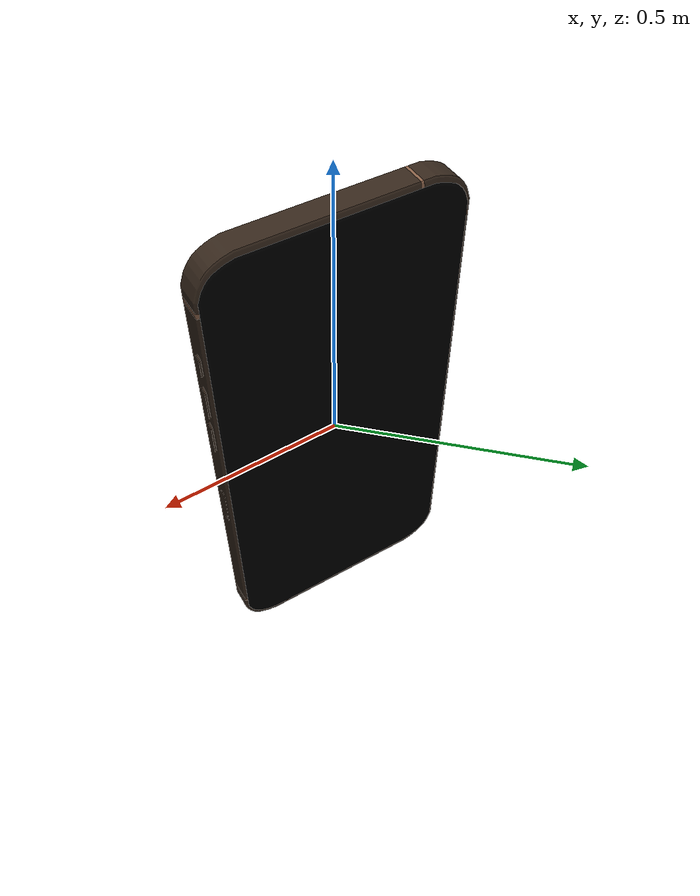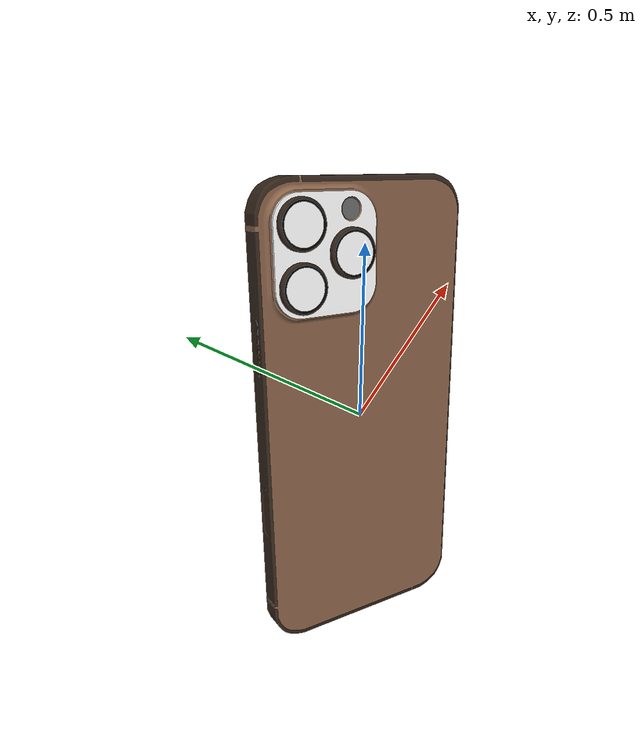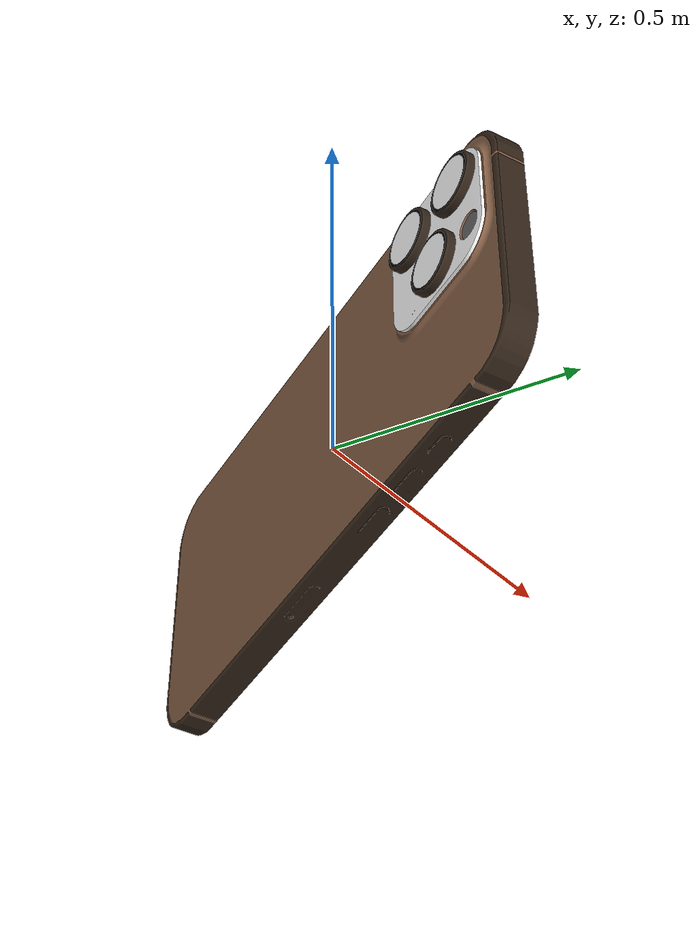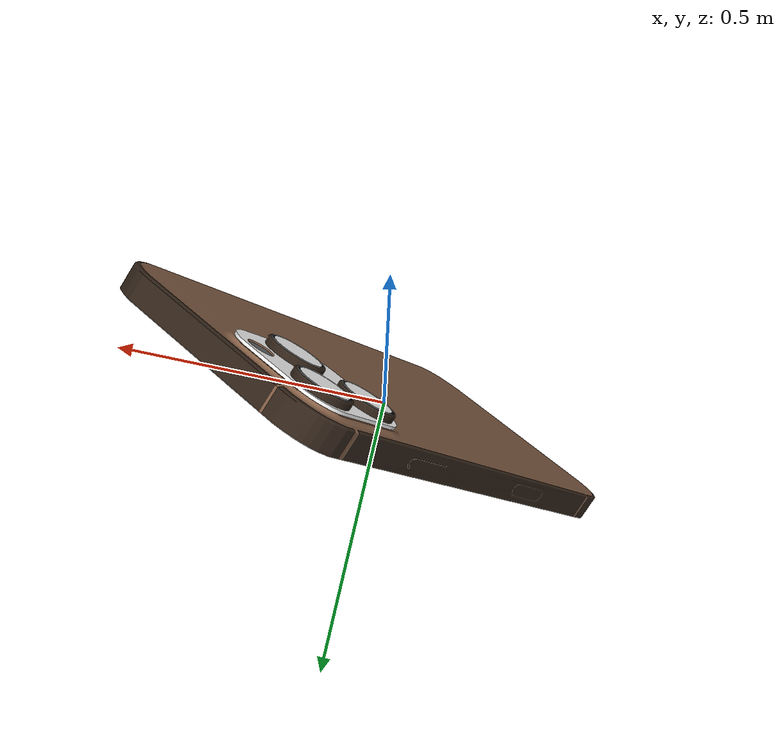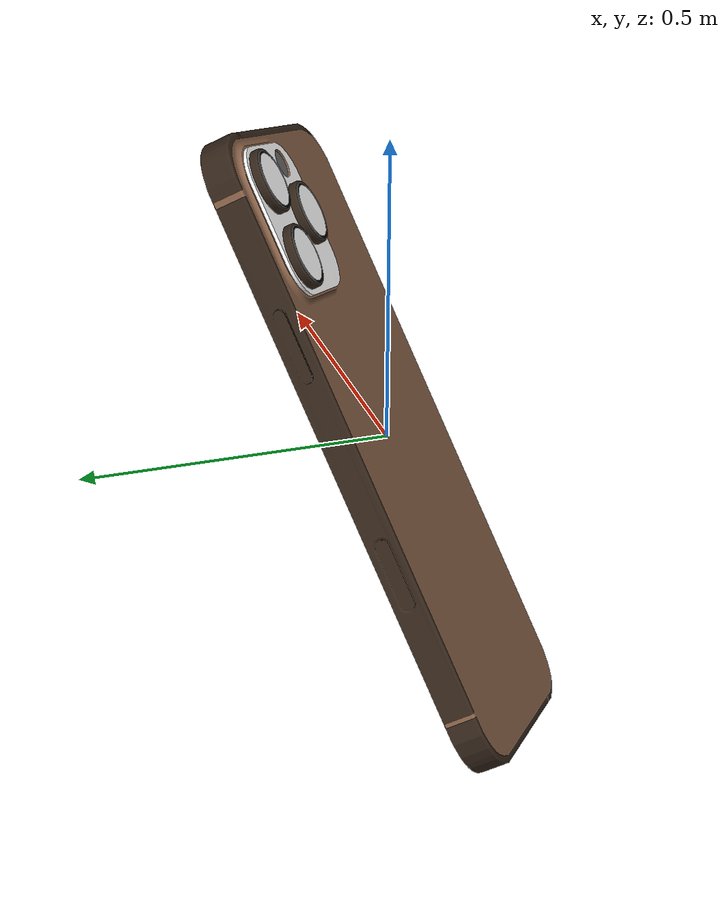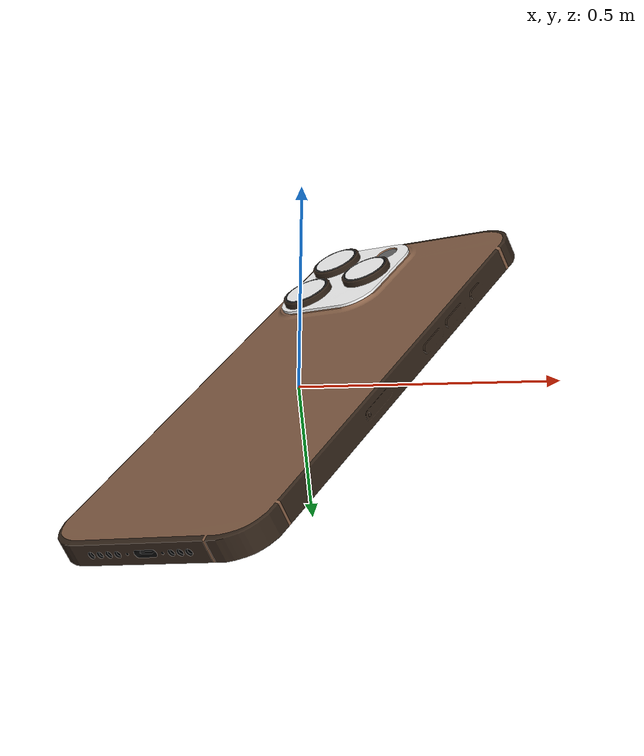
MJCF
<mujoco model="iphone">
  <asset>
  <texture file="visual/ceramic.png" name="tex-iphone" type="2d" />
  <material name="iphone" reflectance="0.5" texrepeat="1 1" texture="tex-iphone" texuniform="false" />
  <mesh file="visual/model_normalized_0.obj" name="model_normalized_0_vis" scale="1.0 1.0 1.0" /><mesh file="visual/model_normalized_1.obj" name="model_normalized_1_vis" scale="1.0 1.0 1.0" /><mesh file="visual/model_normalized_2.obj" name="model_normalized_2_vis" scale="1.0 1.0 1.0" /><mesh file="visual/model_normalized_3.obj" name="model_normalized_3_vis" scale="1.0 1.0 1.0" /><mesh file="visual/model_normalized_4.obj" name="model_normalized_4_vis" scale="1.0 1.0 1.0" /><mesh file="visual/model_normalized_5.obj" name="model_normalized_5_vis" scale="1.0 1.0 1.0" /><mesh file="visual/model_normalized_6.obj" name="model_normalized_6_vis" scale="1.0 1.0 1.0" /><mesh file="visual/model_normalized_7.obj" name="model_normalized_7_vis" scale="1.0 1.0 1.0" /><mesh file="visual/model_normalized_8.obj" name="model_normalized_8_vis" scale="1.0 1.0 1.0" /><mesh file="collision/model_normalized_collision_22.obj" name="model_normalized_collision_22._coll" scale="1.0 1.0 1.0" /><mesh file="collision/model_normalized_collision_23.obj" name="model_normalized_collision_23._coll" scale="1.0 1.0 1.0" /><mesh file="collision/model_normalized_collision_21.obj" name="model_normalized_collision_21._coll" scale="1.0 1.0 1.0" /><mesh file="collision/model_normalized_collision_20.obj" name="model_normalized_collision_20._coll" scale="1.0 1.0 1.0" /><mesh file="collision/model_normalized_collision_24.obj" name="model_normalized_collision_24._coll" scale="1.0 1.0 1.0" /><mesh file="collision/model_normalized_collision_30.obj" name="model_normalized_collision_30._coll" scale="1.0 1.0 1.0" /><mesh file="collision/model_normalized_collision_18.obj" name="model_normalized_collision_18._coll" scale="1.0 1.0 1.0" /><mesh file="collision/model_normalized_collision_19.obj" name="model_normalized_collision_19._coll" scale="1.0 1.0 1.0" /><mesh file="collision/model_normalized_collision_31.obj" name="model_normalized_collision_31._coll" scale="1.0 1.0 1.0" /><mesh file="collision/model_normalized_collision_25.obj" name="model_normalized_collision_25._coll" scale="1.0 1.0 1.0" /><mesh file="collision/model_normalized_collision_27.obj" name="model_normalized_collision_27._coll" scale="1.0 1.0 1.0" /><mesh file="collision/model_normalized_collision_26.obj" name="model_normalized_collision_26._coll" scale="1.0 1.0 1.0" /><mesh file="collision/model_normalized_collision_9.obj" name="model_normalized_collision_9._coll" scale="1.0 1.0 1.0" /><mesh file="collision/model_normalized_collision_8.obj" name="model_normalized_collision_8._coll" scale="1.0 1.0 1.0" /><mesh file="collision/model_normalized_collision_6.obj" name="model_normalized_collision_6._coll" scale="1.0 1.0 1.0" /><mesh file="collision/model_normalized_collision_7.obj" name="model_normalized_collision_7._coll" scale="1.0 1.0 1.0" /><mesh file="collision/model_normalized_collision_5.obj" name="model_normalized_collision_5._coll" scale="1.0 1.0 1.0" /><mesh file="collision/model_normalized_collision_4.obj" name="model_normalized_collision_4._coll" scale="1.0 1.0 1.0" /><mesh file="collision/model_normalized_collision_0.obj" name="model_normalized_collision_0._coll" scale="1.0 1.0 1.0" /><mesh file="collision/model_normalized_collision_1.obj" name="model_normalized_collision_1._coll" scale="1.0 1.0 1.0" /><mesh file="collision/model_normalized_collision_3.obj" name="model_normalized_collision_3._coll" scale="1.0 1.0 1.0" /><mesh file="collision/model_normalized_collision_2.obj" name="model_normalized_collision_2._coll" scale="1.0 1.0 1.0" /><mesh file="collision/model_normalized_collision_17.obj" name="model_normalized_collision_17._coll" scale="1.0 1.0 1.0" /><mesh file="collision/model_normalized_collision_16.obj" name="model_normalized_collision_16._coll" scale="1.0 1.0 1.0" /><mesh file="collision/model_normalized_collision_28.obj" name="model_normalized_collision_28._coll" scale="1.0 1.0 1.0" /><mesh file="collision/model_normalized_collision_14.obj" name="model_normalized_collision_14._coll" scale="1.0 1.0 1.0" /><mesh file="collision/model_normalized_collision_15.obj" name="model_normalized_collision_15._coll" scale="1.0 1.0 1.0" /><mesh file="collision/model_normalized_collision_29.obj" name="model_normalized_collision_29._coll" scale="1.0 1.0 1.0" /><mesh file="collision/model_normalized_collision_11.obj" name="model_normalized_collision_11._coll" scale="1.0 1.0 1.0" /><mesh file="collision/model_normalized_collision_10.obj" name="model_normalized_collision_10._coll" scale="1.0 1.0 1.0" /><mesh file="collision/model_normalized_collision_12.obj" name="model_normalized_collision_12._coll" scale="1.0 1.0 1.0" /><mesh file="collision/model_normalized_collision_13.obj" name="model_normalized_collision_13._coll" scale="1.0 1.0 1.0" /><material name="material_0" specular="0.4000000000000001" shininess="0.001" rgba="0.00000000 0.00000000 0.00000000 1.0" /><material name="material_1" specular="0.4000000000000001" shininess="0.001" rgba="1.00000000 1.00000000 1.00000000 1.0" /><material name="material_2" specular="0.4000000000000001" shininess="0.001" rgba="0.03137255 0.02745098 0.05098039 1.0" /><material name="material_3" specular="0.4000000000000001" shininess="0.001" rgba="0.00784314 0.00392157 0.01176471 1.0" /><material name="material_4" specular="0.4000000000000001" shininess="0.001" rgba="0.20000000 0.20000000 0.20000000 1.0" /><material name="material_5" specular="0.4000000000000001" shininess="0.001" rgba="0.40000000 0.40000000 0.40000000 1.0" /><material name="material_6" specular="0.4000000000000001" shininess="0.001" rgba="0.00000000 0.00000000 0.01176471 1.0" /><material name="material_7" specular="0.4000000000000001" shininess="0.001" rgba="0.52156863 0.37254902 0.27450980 1.0" /><material name="material_8" specular="0.4000000000000001" shininess="0.001" rgba="0.20000000 0.14509804 0.10196078 1.0" /></asset>
  <worldbody>
    <body>
      <body name="object">
      <geom solimp="0.998 0.998 0.001" solref="0.001 1" density="100" friction="0.95 0.3 0.1" type="mesh" mesh="model_normalized_0_vis" conaffinity="0" contype="0" group="1" material="material_8" /><geom solimp="0.998 0.998 0.001" solref="0.001 1" density="100" friction="0.95 0.3 0.1" type="mesh" mesh="model_normalized_1_vis" conaffinity="0" contype="0" group="1" material="material_7" /><geom solimp="0.998 0.998 0.001" solref="0.001 1" density="100" friction="0.95 0.3 0.1" type="mesh" mesh="model_normalized_2_vis" conaffinity="0" contype="0" group="1" material="material_6" /><geom solimp="0.998 0.998 0.001" solref="0.001 1" density="100" friction="0.95 0.3 0.1" type="mesh" mesh="model_normalized_3_vis" conaffinity="0" contype="0" group="1" material="material_5" /><geom solimp="0.998 0.998 0.001" solref="0.001 1" density="100" friction="0.95 0.3 0.1" type="mesh" mesh="model_normalized_4_vis" conaffinity="0" contype="0" group="1" material="material_4" /><geom solimp="0.998 0.998 0.001" solref="0.001 1" density="100" friction="0.95 0.3 0.1" type="mesh" mesh="model_normalized_5_vis" conaffinity="0" contype="0" group="1" material="material_3" /><geom solimp="0.998 0.998 0.001" solref="0.001 1" density="100" friction="0.95 0.3 0.1" type="mesh" mesh="model_normalized_6_vis" conaffinity="0" contype="0" group="1" material="material_2" /><geom solimp="0.998 0.998 0.001" solref="0.001 1" density="100" friction="0.95 0.3 0.1" type="mesh" mesh="model_normalized_7_vis" conaffinity="0" contype="0" group="1" material="material_1" /><geom solimp="0.998 0.998 0.001" solref="0.001 1" density="100" friction="0.95 0.3 0.1" type="mesh" mesh="model_normalized_8_vis" conaffinity="0" contype="0" group="1" material="material_0" /><geom solimp="0.998 0.998 0.001" solref="0.001 1" density="100" friction="0.95 0.3 0.1" type="mesh" mesh="model_normalized_collision_22._coll" group="0" rgba="0.8 0.8 0.8 0.0" /><geom solimp="0.998 0.998 0.001" solref="0.001 1" density="100" friction="0.95 0.3 0.1" type="mesh" mesh="model_normalized_collision_23._coll" group="0" rgba="0.8 0.8 0.8 0.0" /><geom solimp="0.998 0.998 0.001" solref="0.001 1" density="100" friction="0.95 0.3 0.1" type="mesh" mesh="model_normalized_collision_21._coll" group="0" rgba="0.8 0.8 0.8 0.0" /><geom solimp="0.998 0.998 0.001" solref="0.001 1" density="100" friction="0.95 0.3 0.1" type="mesh" mesh="model_normalized_collision_20._coll" group="0" rgba="0.8 0.8 0.8 0.0" /><geom solimp="0.998 0.998 0.001" solref="0.001 1" density="100" friction="0.95 0.3 0.1" type="mesh" mesh="model_normalized_collision_24._coll" group="0" rgba="0.8 0.8 0.8 0.0" /><geom solimp="0.998 0.998 0.001" solref="0.001 1" density="100" friction="0.95 0.3 0.1" type="mesh" mesh="model_normalized_collision_30._coll" group="0" rgba="0.8 0.8 0.8 0.0" /><geom solimp="0.998 0.998 0.001" solref="0.001 1" density="100" friction="0.95 0.3 0.1" type="mesh" mesh="model_normalized_collision_18._coll" group="0" rgba="0.8 0.8 0.8 0.0" /><geom solimp="0.998 0.998 0.001" solref="0.001 1" density="100" friction="0.95 0.3 0.1" type="mesh" mesh="model_normalized_collision_19._coll" group="0" rgba="0.8 0.8 0.8 0.0" /><geom solimp="0.998 0.998 0.001" solref="0.001 1" density="100" friction="0.95 0.3 0.1" type="mesh" mesh="model_normalized_collision_31._coll" group="0" rgba="0.8 0.8 0.8 0.0" /><geom solimp="0.998 0.998 0.001" solref="0.001 1" density="100" friction="0.95 0.3 0.1" type="mesh" mesh="model_normalized_collision_25._coll" group="0" rgba="0.8 0.8 0.8 0.0" /><geom solimp="0.998 0.998 0.001" solref="0.001 1" density="100" friction="0.95 0.3 0.1" type="mesh" mesh="model_normalized_collision_27._coll" group="0" rgba="0.8 0.8 0.8 0.0" /><geom solimp="0.998 0.998 0.001" solref="0.001 1" density="100" friction="0.95 0.3 0.1" type="mesh" mesh="model_normalized_collision_26._coll" group="0" rgba="0.8 0.8 0.8 0.0" /><geom solimp="0.998 0.998 0.001" solref="0.001 1" density="100" friction="0.95 0.3 0.1" type="mesh" mesh="model_normalized_collision_9._coll" group="0" rgba="0.8 0.8 0.8 0.0" /><geom solimp="0.998 0.998 0.001" solref="0.001 1" density="100" friction="0.95 0.3 0.1" type="mesh" mesh="model_normalized_collision_8._coll" group="0" rgba="0.8 0.8 0.8 0.0" /><geom solimp="0.998 0.998 0.001" solref="0.001 1" density="100" friction="0.95 0.3 0.1" type="mesh" mesh="model_normalized_collision_6._coll" group="0" rgba="0.8 0.8 0.8 0.0" /><geom solimp="0.998 0.998 0.001" solref="0.001 1" density="100" friction="0.95 0.3 0.1" type="mesh" mesh="model_normalized_collision_7._coll" group="0" rgba="0.8 0.8 0.8 0.0" /><geom solimp="0.998 0.998 0.001" solref="0.001 1" density="100" friction="0.95 0.3 0.1" type="mesh" mesh="model_normalized_collision_5._coll" group="0" rgba="0.8 0.8 0.8 0.0" /><geom solimp="0.998 0.998 0.001" solref="0.001 1" density="100" friction="0.95 0.3 0.1" type="mesh" mesh="model_normalized_collision_4._coll" group="0" rgba="0.8 0.8 0.8 0.0" /><geom solimp="0.998 0.998 0.001" solref="0.001 1" density="100" friction="0.95 0.3 0.1" type="mesh" mesh="model_normalized_collision_0._coll" group="0" rgba="0.8 0.8 0.8 0.0" /><geom solimp="0.998 0.998 0.001" solref="0.001 1" density="100" friction="0.95 0.3 0.1" type="mesh" mesh="model_normalized_collision_1._coll" group="0" rgba="0.8 0.8 0.8 0.0" /><geom solimp="0.998 0.998 0.001" solref="0.001 1" density="100" friction="0.95 0.3 0.1" type="mesh" mesh="model_normalized_collision_3._coll" group="0" rgba="0.8 0.8 0.8 0.0" /><geom solimp="0.998 0.998 0.001" solref="0.001 1" density="100" friction="0.95 0.3 0.1" type="mesh" mesh="model_normalized_collision_2._coll" group="0" rgba="0.8 0.8 0.8 0.0" /><geom solimp="0.998 0.998 0.001" solref="0.001 1" density="100" friction="0.95 0.3 0.1" type="mesh" mesh="model_normalized_collision_17._coll" group="0" rgba="0.8 0.8 0.8 0.0" /><geom solimp="0.998 0.998 0.001" solref="0.001 1" density="100" friction="0.95 0.3 0.1" type="mesh" mesh="model_normalized_collision_16._coll" group="0" rgba="0.8 0.8 0.8 0.0" /><geom solimp="0.998 0.998 0.001" solref="0.001 1" density="100" friction="0.95 0.3 0.1" type="mesh" mesh="model_normalized_collision_28._coll" group="0" rgba="0.8 0.8 0.8 0.0" /><geom solimp="0.998 0.998 0.001" solref="0.001 1" density="100" friction="0.95 0.3 0.1" type="mesh" mesh="model_normalized_collision_14._coll" group="0" rgba="0.8 0.8 0.8 0.0" /><geom solimp="0.998 0.998 0.001" solref="0.001 1" density="100" friction="0.95 0.3 0.1" type="mesh" mesh="model_normalized_collision_15._coll" group="0" rgba="0.8 0.8 0.8 0.0" /><geom solimp="0.998 0.998 0.001" solref="0.001 1" density="100" friction="0.95 0.3 0.1" type="mesh" mesh="model_normalized_collision_29._coll" group="0" rgba="0.8 0.8 0.8 0.0" /><geom solimp="0.998 0.998 0.001" solref="0.001 1" density="100" friction="0.95 0.3 0.1" type="mesh" mesh="model_normalized_collision_11._coll" group="0" rgba="0.8 0.8 0.8 0.0" /><geom solimp="0.998 0.998 0.001" solref="0.001 1" density="100" friction="0.95 0.3 0.1" type="mesh" mesh="model_normalized_collision_10._coll" group="0" rgba="0.8 0.8 0.8 0.0" /><geom solimp="0.998 0.998 0.001" solref="0.001 1" density="100" friction="0.95 0.3 0.1" type="mesh" mesh="model_normalized_collision_12._coll" group="0" rgba="0.8 0.8 0.8 0.0" /><geom solimp="0.998 0.998 0.001" solref="0.001 1" density="100" friction="0.95 0.3 0.1" type="mesh" mesh="model_normalized_collision_13._coll" group="0" rgba="0.8 0.8 0.8 0.0" /></body>
      <site rgba="0 0 0 0" size="0.005" pos="0.00011188066080033976 -0.0007058439325043353 -0.5075757702413749" name="bottom_site" />
      <site rgba="0 0 0 0" size="0.005" pos="0.00011188066080033976 -0.0007058439325043353 0.5075757637962651" name="top_site" />
      <site rgba="0 0 0 0" size="0.005" pos="0.43950582829666807 0.2871729489461263 -3.222554889603657e-09" name="horizontal_radius_site" />
    </body>
  </worldbody>
</mujoco>
